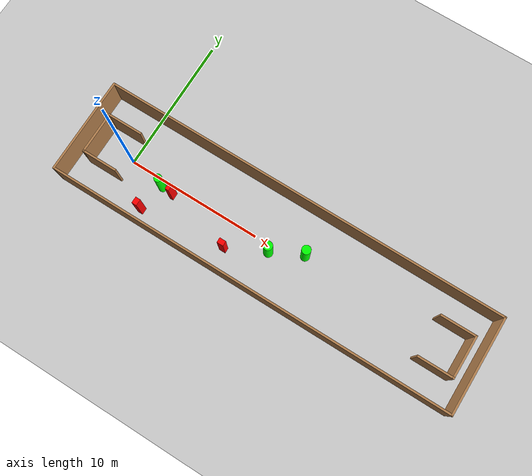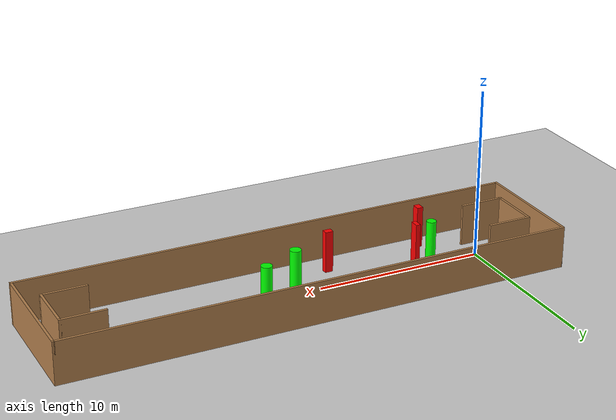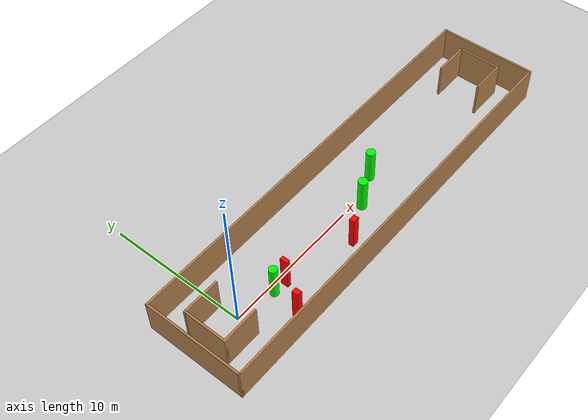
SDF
<sdf version="1.7">
 <world name="default">
  <light name="sun" type="directional">
   <pose>0 0 10 0 -0 0</pose>
   <diffuse>0.8 0.8 0.8 1</diffuse>
   <specular>0.2 0.2 0.2 1</specular>
   <attenuation>
    <range>1000</range>
    <constant>0.9</constant>
    <linear>0.01</linear>
    <quadratic>0.001</quadratic>
   </attenuation>
   <direction>-0.5 0.1 -0.9</direction>
   <spot><inner_angle>0</inner_angle><outer_angle>0</outer_angle><falloff>0</falloff></spot>
  </light>
  <model name="ground_plane">
   <static>1</static>
   <link name="link">
    <collision name="collision">
     <geometry><plane><normal>0 0 1</normal><size>100 100</size></plane></geometry>
     <surface>
      <contact><collide_bitmask>65535</collide_bitmask></contact>
      <friction><ode><mu>100</mu><mu2>50</mu2></ode></friction>
     </surface>
    </collision>
    <visual name="visual">
     <cast_shadows>0</cast_shadows>
     <geometry><plane><normal>0 0 1</normal><size>100 100</size></plane></geometry>
     <material>
      <script><uri>file://media/materials/scripts/gazebo.material</uri><name>Gazebo/Grey</name></script>
     </material>
    </visual>
   </link>
  </model>
  <gravity>0 0 -9.8</gravity>
  <magnetic_field>6e-06 2.3e-05 -4.2e-05</magnetic_field>
  <atmosphere type="adiabatic"/>
  <physics type="ode">
   <max_step_size>0.001</max_step_size>
   <real_time_factor>1</real_time_factor>
   <real_time_update_rate>1000</real_time_update_rate>
  </physics>
  <scene><ambient>0.4 0.4 0.4 1</ambient><background>0.7 0.7 0.7 1</background><shadows>1</shadows></scene>
  <spherical_coordinates>
   <surface_model>EARTH_WGS84</surface_model>
   <latitude_deg>0</latitude_deg>
   <longitude_deg>0</longitude_deg>
   <elevation>0</elevation>
   <heading_deg>0</heading_deg>
  </spherical_coordinates>
  <model name="my_base_walls">
   <link name="Wall_0">
    <collision name="Wall_0_Collision">
     <geometry><box><size>7.15 0.15 2.5</size></box></geometry>
     <pose>0 0 1.25 0 -0 0</pose>
    </collision>
    <visual name="Wall_0_Visual">
     <pose>0 0 1.25 0 -0 0</pose>
     <geometry><box><size>7.15 0.15 2.5</size></box></geometry>
     <material>
      <script><uri>file://media/materials/scripts/gazebo.material</uri><name>Gazebo/Wood</name></script>
      <ambient>1 1 1 1</ambient>
     </material>
     <meta><layer>0</layer></meta>
    </visual>
    <pose>-15 0 0 0 -0 1.5708</pose>
   </link>
   <link name="Wall_10">
    <collision name="Wall_10_Collision">
     <geometry><box><size>2.65 0.15 2.5</size></box></geometry>
     <pose>0 0 1.25 0 -0 0</pose>
    </collision>
    <visual name="Wall_10_Visual">
     <pose>0 0 1.25 0 -0 0</pose>
     <geometry><box><size>2.65 0.15 2.5</size></box></geometry>
     <material>
      <script><uri>file://media/materials/scripts/gazebo.material</uri><name>Gazebo/Wood</name></script>
      <ambient>1 1 1 1</ambient>
     </material>
     <meta><layer>0</layer></meta>
    </visual>
    <pose>-12.75 -1.5 0 0 -0 0</pose>
   </link>
   <link name="Wall_12">
    <collision name="Wall_12_Collision">
     <geometry><box><size>2.65 0.15 2.5</size></box></geometry>
     <pose>0 0 1.25 0 -0 0</pose>
    </collision>
    <visual name="Wall_12_Visual">
     <pose>0 0 1.25 0 -0 0</pose>
     <geometry><box><size>2.65 0.15 2.5</size></box></geometry>
     <material>
      <script><uri>file://media/materials/scripts/gazebo.material</uri><name>Gazebo/Wood</name></script>
      <ambient>1 1 1 1</ambient>
     </material>
     <meta><layer>0</layer></meta>
    </visual>
    <pose>-12.75 1.5 0 0 -0 0</pose>
   </link>
   <link name="Wall_14">
    <collision name="Wall_14_Collision">
     <geometry><box><size>3.15 0.15 2.5</size></box></geometry>
     <pose>0 0 1.25 0 -0 0</pose>
    </collision>
    <visual name="Wall_14_Visual">
     <pose>0 0 1.25 0 -0 0</pose>
     <geometry><box><size>3.15 0.15 2.5</size></box></geometry>
     <material>
      <script><uri>file://media/materials/scripts/gazebo.material</uri><name>Gazebo/Wood</name></script>
      <ambient>1 1 1 1</ambient>
     </material>
     <meta><layer>0</layer></meta>
    </visual>
    <pose>14 0 0 0 -0 -1.5708</pose>
   </link>
   <link name="Wall_15">
    <collision name="Wall_15_Collision">
     <geometry><box><size>2.65 0.15 2.5</size></box></geometry>
     <pose>0 0 1.25 0 -0 0</pose>
    </collision>
    <visual name="Wall_15_Visual">
     <pose>0 0 1.25 0 -0 0</pose>
     <geometry><box><size>2.65 0.15 2.5</size></box></geometry>
     <material>
      <script><uri>file://media/materials/scripts/gazebo.material</uri><name>Gazebo/Wood</name></script>
      <ambient>1 1 1 1</ambient>
     </material>
     <meta><layer>0</layer></meta>
    </visual>
    <pose>12.75 -1.5 0 0 -0 3.14159</pose>
   </link>
   <link name="Wall_17">
    <collision name="Wall_17_Collision">
     <geometry><box><size>2.65 0.15 2.5</size></box></geometry>
     <pose>0 0 1.25 0 -0 0</pose>
    </collision>
    <visual name="Wall_17_Visual">
     <pose>0 0 1.25 0 -0 0</pose>
     <geometry><box><size>2.65 0.15 2.5</size></box></geometry>
     <material>
      <script><uri>file://media/materials/scripts/gazebo.material</uri><name>Gazebo/Wood</name></script>
      <ambient>1 1 1 1</ambient>
     </material>
     <meta><layer>0</layer></meta>
    </visual>
    <pose>12.75 1.5 0 0 -0 3.14159</pose>
   </link>
   <link name="Wall_2">
    <collision name="Wall_2_Collision">
     <geometry><box><size>30.15 0.15 2.5</size></box></geometry>
     <pose>0 0 1.25 0 -0 0</pose>
    </collision>
    <visual name="Wall_2_Visual">
     <pose>0 0 1.25 0 -0 0</pose>
     <geometry><box><size>30.15 0.15 2.5</size></box></geometry>
     <material>
      <script><uri>file://media/materials/scripts/gazebo.material</uri><name>Gazebo/Wood</name></script>
      <ambient>1 1 1 1</ambient>
     </material>
     <meta><layer>0</layer></meta>
    </visual>
    <pose>-0 -3.5 0 0 -0 0</pose>
   </link>
   <link name="Wall_4">
    <collision name="Wall_4_Collision">
     <geometry><box><size>30.15 0.15 2.5</size></box></geometry>
     <pose>0 0 1.25 0 -0 0</pose>
    </collision>
    <visual name="Wall_4_Visual">
     <pose>0 0 1.25 0 -0 0</pose>
     <geometry><box><size>30.15 0.15 2.5</size></box></geometry>
     <material>
      <script><uri>file://media/materials/scripts/gazebo.material</uri><name>Gazebo/Wood</name></script>
      <ambient>1 1 1 1</ambient>
     </material>
     <meta><layer>0</layer></meta>
    </visual>
    <pose>-0 3.5 0 0 -0 0</pose>
   </link>
   <link name="Wall_6">
    <collision name="Wall_6_Collision">
     <geometry><box><size>7.15 0.15 2.5</size></box></geometry>
     <pose>0 0 1.25 0 -0 0</pose>
    </collision>
    <visual name="Wall_6_Visual">
     <pose>0 0 1.25 0 -0 0</pose>
     <geometry><box><size>7.15 0.15 2.5</size></box></geometry>
     <material>
      <script><uri>file://media/materials/scripts/gazebo.material</uri><name>Gazebo/Wood</name></script>
      <ambient>1 1 1 1</ambient>
     </material>
     <meta><layer>0</layer></meta>
    </visual>
    <pose>15 0 0 0 -0 -1.5708</pose>
   </link>
   <link name="Wall_9">
    <collision name="Wall_9_Collision">
     <geometry><box><size>3.15 0.15 2.5</size></box></geometry>
     <pose>0 0 1.25 0 -0 0</pose>
    </collision>
    <visual name="Wall_9_Visual">
     <pose>0 0 1.25 0 -0 0</pose>
     <geometry><box><size>3.15 0.15 2.5</size></box></geometry>
     <material>
      <script><uri>file://media/materials/scripts/gazebo.material</uri><name>Gazebo/Wood</name></script>
      <ambient>1 1 1 1</ambient>
     </material>
     <meta><layer>0</layer></meta>
    </visual>
    <pose>-14 0 0 0 -0 -1.5708</pose>
   </link>
   <static>1</static>
   <pose>11.5 0 0 0 -0 0</pose>
  </model>
  <model name="cylinder1">
   <static>1</static>
   <link name="link">
    <inertial>
     <mass>1</mass>
     <inertia><ixx>0.5</ixx><ixy>0</ixy><ixz>0</ixz><iyy>0.5</iyy><iyz>0</iyz><izz>1</izz></inertia>
    </inertial>
    <collision name="collision">
     <geometry><cylinder><radius>0.3232836009692004</radius><length>2.5</length></cylinder></geometry>
    </collision>
    <visual name="visual">
     <geometry><cylinder><radius>0.3232836009692004</radius><length>2.5</length></cylinder></geometry>
     <material>
      <ambient>0 1 0 1</ambient>
      <diffuse>0 1 0 1</diffuse>
      <specular>0.1 0.1 0.1 1</specular>
      <emissive>0 0 0 0</emissive>
     </material>
    </visual>
   </link>
   <pose>13.576466564236632 0.5875500544393093 1.25 0 0 0</pose>
  </model>
  <model name="cylinder2">
   <static>1</static>
   <link name="link">
    <inertial>
     <mass>1</mass>
     <inertia><ixx>0.5</ixx><ixy>0</ixy><ixz>0</ixz><iyy>0.5</iyy><iyz>0</iyz><izz>1</izz></inertia>
    </inertial>
    <collision name="collision">
     <geometry><cylinder><radius>0.3317672779279574</radius><length>2.5</length></cylinder></geometry>
    </collision>
    <visual name="visual">
     <geometry><cylinder><radius>0.3317672779279574</radius><length>2.5</length></cylinder></geometry>
     <material>
      <ambient>0 1 0 1</ambient>
      <diffuse>0 1 0 1</diffuse>
      <specular>0.1 0.1 0.1 1</specular>
      <emissive>0 0 0 0</emissive>
     </material>
    </visual>
   </link>
   <pose>11.323792664139134 -0.4916064144442309 1.25 0 0 0</pose>
  </model>
  <model name="cylinder3">
   <static>1</static>
   <link name="link">
    <inertial>
     <mass>1</mass>
     <inertia><ixx>0.5</ixx><ixy>0</ixy><ixz>0</ixz><iyy>0.5</iyy><iyz>0</iyz><izz>1</izz></inertia>
    </inertial>
    <collision name="collision">
     <geometry><cylinder><radius>0.28672818708637915</radius><length>2.5</length></cylinder></geometry>
    </collision>
    <visual name="visual">
     <geometry><cylinder><radius>0.28672818708637915</radius><length>2.5</length></cylinder></geometry>
     <material>
      <ambient>0 1 0 1</ambient>
      <diffuse>0 1 0 1</diffuse>
      <specular>0.1 0.1 0.1 1</specular>
      <emissive>0 0 0 0</emissive>
     </material>
    </visual>
   </link>
   <pose>2.743879513487114 -0.46414882219643916 1.25 0 0 0</pose>
  </model>
  <model name="box1">
   <static>1</static>
   <link name="link">
    <inertial>
     <mass>1</mass>
     <inertia><ixx>0.083</ixx><ixy>0</ixy><ixz>0</ixz><iyy>0.083</iyy><iyz>0</iyz><izz>0.083</izz></inertia>
    </inertial>
    <collision name="collision">
     <geometry><box><size>0.2729649842734182 0.5358181329593811 2.5</size></box></geometry>
    </collision>
    <visual name="visual">
     <geometry><box><size>0.2729649842734182 0.5358181329593811 2.5</size></box></geometry>
     <material>
      <ambient>1 0 0 1</ambient>
      <diffuse>1 0 0 1</diffuse>
      <specular>0.1 0.1 0.1 1</specular>
      <emissive>0 0 0 0</emissive>
     </material>
    </visual>
    <sensor name="my_contact" type="contact">
     <contact><collision>box_collision</collision><topic>__default_topic__</topic></contact>
    </sensor>
   </link>
   <pose>3.686391220569943 -0.560521506771416 1.25 0 0 0</pose>
  </model>
  <model name="box2">
   <static>1</static>
   <link name="link">
    <inertial>
     <mass>1</mass>
     <inertia><ixx>0.083</ixx><ixy>0</ixy><ixz>0</ixz><iyy>0.083</iyy><iyz>0</iyz><izz>0.083</izz></inertia>
    </inertial>
    <collision name="collision">
     <geometry><box><size>0.36455429162345937 0.47517724738799455 2.5</size></box></geometry>
    </collision>
    <visual name="visual">
     <geometry><box><size>0.36455429162345937 0.47517724738799455 2.5</size></box></geometry>
     <material>
      <ambient>1 0 0 1</ambient>
      <diffuse>1 0 0 1</diffuse>
      <specular>0.1 0.1 0.1 1</specular>
      <emissive>0 0 0 0</emissive>
     </material>
    </visual>
    <sensor name="my_contact" type="contact">
     <contact><collision>box_collision</collision><topic>__default_topic__</topic></contact>
    </sensor>
   </link>
   <pose>2.4215675045711524 -2.530688342515461 1.25 0 0 0</pose>
  </model>
  <model name="box3">
   <static>1</static>
   <link name="link">
    <inertial>
     <mass>1</mass>
     <inertia><ixx>0.083</ixx><ixy>0</ixy><ixz>0</ixz><iyy>0.083</iyy><iyz>0</iyz><izz>0.083</izz></inertia>
    </inertial>
    <collision name="collision">
     <geometry><box><size>0.47120148723469807 0.36916320518122997 2.5</size></box></geometry>
    </collision>
    <visual name="visual">
     <geometry><box><size>0.47120148723469807 0.36916320518122997 2.5</size></box></geometry>
     <material>
      <ambient>1 0 0 1</ambient>
      <diffuse>1 0 0 1</diffuse>
      <specular>0.1 0.1 0.1 1</specular>
      <emissive>0 0 0 0</emissive>
     </material>
    </visual>
    <sensor name="my_contact" type="contact">
     <contact><collision>box_collision</collision><topic>__default_topic__</topic></contact>
    </sensor>
   </link>
   <pose>8.63219591490731 -1.8619442856543849 1.25 0 0 0</pose>
  </model>
 </world>
</sdf>
